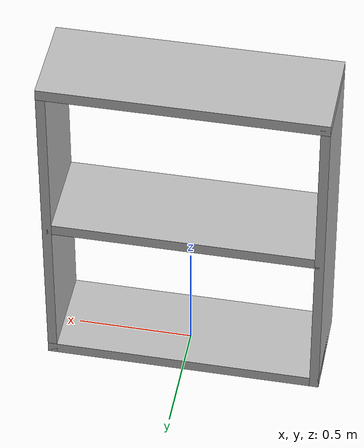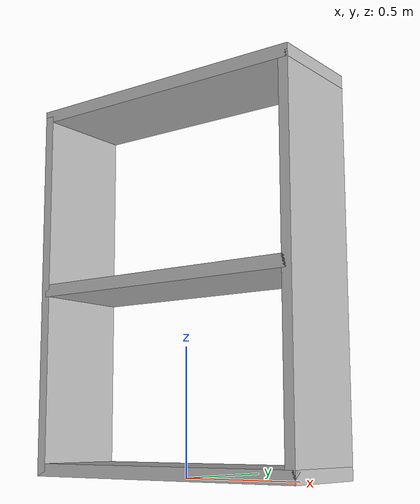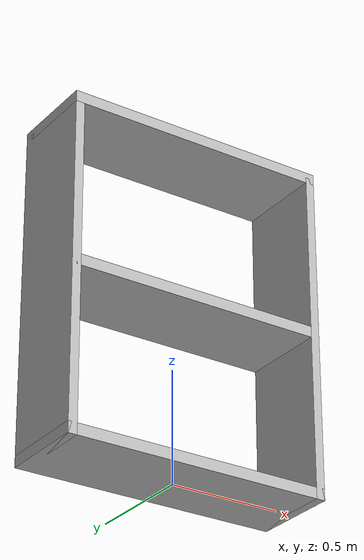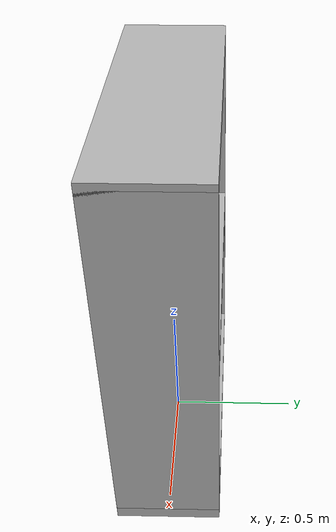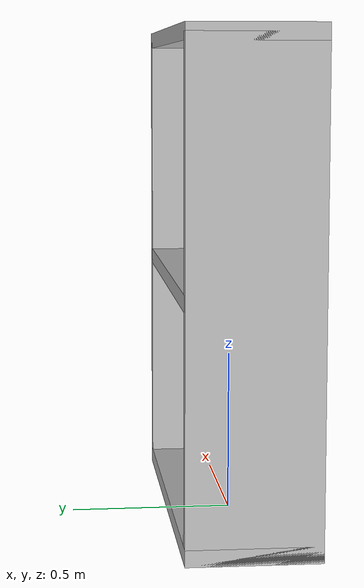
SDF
<?xml version="1.0"?>
<sdf version="1.6">
  <model name="simple_shelf">
    <static>true</static>
    <link name="base">
      <!-- Bottom shelf -->
      <visual name="v_bottom"><geometry><box><size>1.2 0.4 0.05</size></box></geometry></visual>
      <collision name="c_bottom"><geometry><box><size>1.2 0.4 0.05</size></box></geometry></collision>
      <pose>0 0 0.025 0 0 0</pose>
    </link>
    <!-- Uprights -->
    <link name="upright1"><pose>-0.58 0 0.75 0 0 0</pose><visual name="v_u1"><geometry><box><size>0.04 0.4 1.5</size></box></geometry></visual><collision name="c_u1"><geometry><box><size>0.04 0.4 1.5</size></box></geometry></collision></link>
    <link name="upright2"><pose>0.58 0 0.75 0 0 0</pose><visual name="v_u2"><geometry><box><size>0.04 0.4 1.5</size></box></geometry></visual><collision name="c_u2"><geometry><box><size>0.04 0.4 1.5</size></box></geometry></collision></link>
    <!-- Middle shelf -->
    <link name="middle_shelf"><pose>0 0 0.75 0 0 0</pose><visual name="v_mid"><geometry><box><size>1.16 0.4 0.05</size></box></geometry></visual><collision name="c_mid"><geometry><box><size>1.16 0.4 0.05</size></box></geometry></collision></link>
    <!-- Top shelf -->
    <link name="top_shelf"><pose>0 0 1.5 0 0 0</pose><visual name="v_top"><geometry><box><size>1.2 0.4 0.05</size></box></geometry></visual><collision name="c_top"><geometry><box><size>1.2 0.4 0.05</size></box></geometry></collision></link>

    <joint name="j_u1" type="fixed"><parent>base</parent><child>upright1</child></joint>
    <joint name="j_u2" type="fixed"><parent>base</parent><child>upright2</child></joint>
    <joint name="j_mid" type="fixed"><parent>base</parent><child>middle_shelf</child></joint>
    <joint name="j_top" type="fixed"><parent>base</parent><child>top_shelf</child></joint>
  </model>
</sdf>
